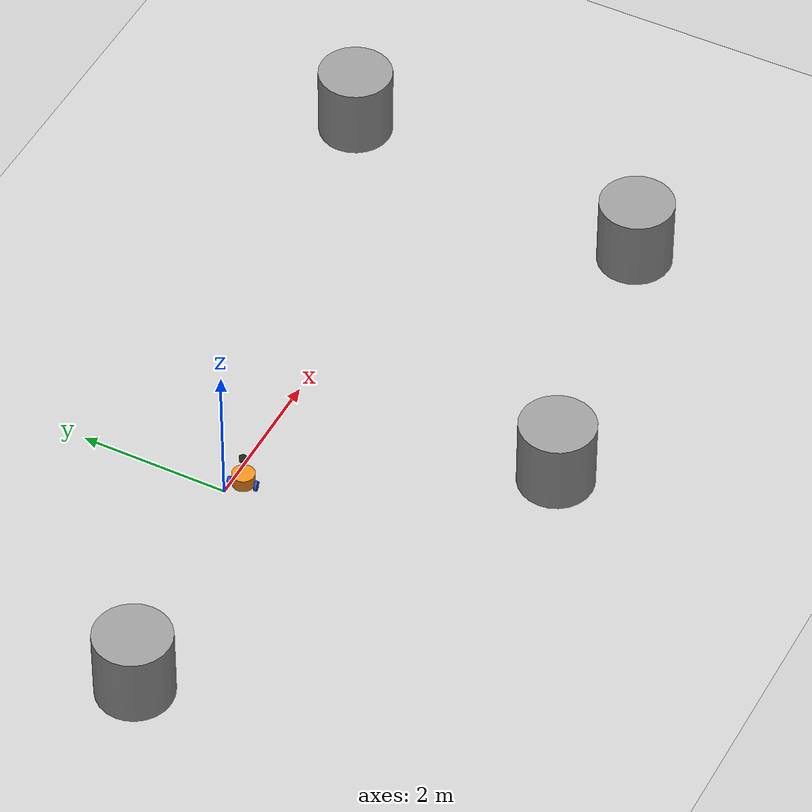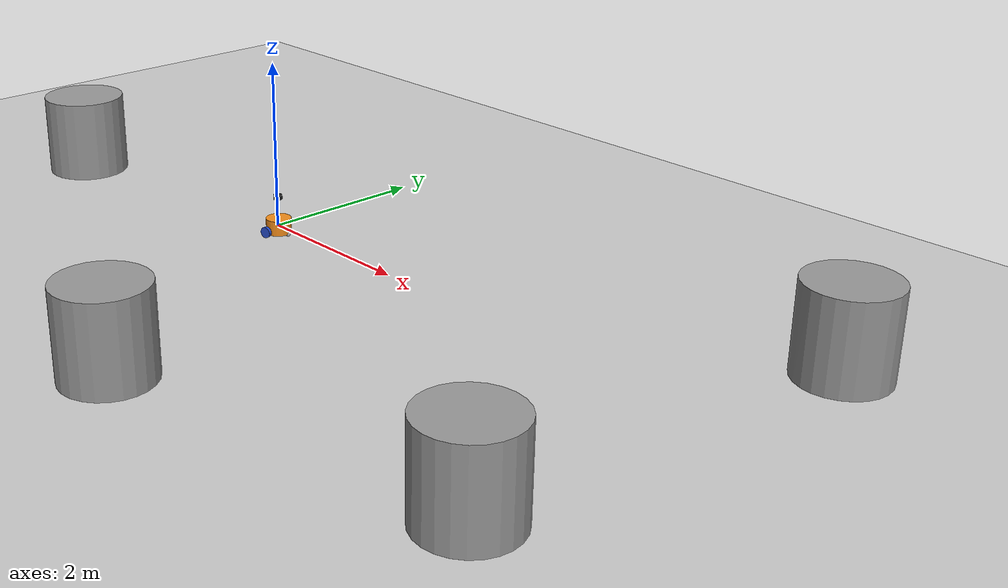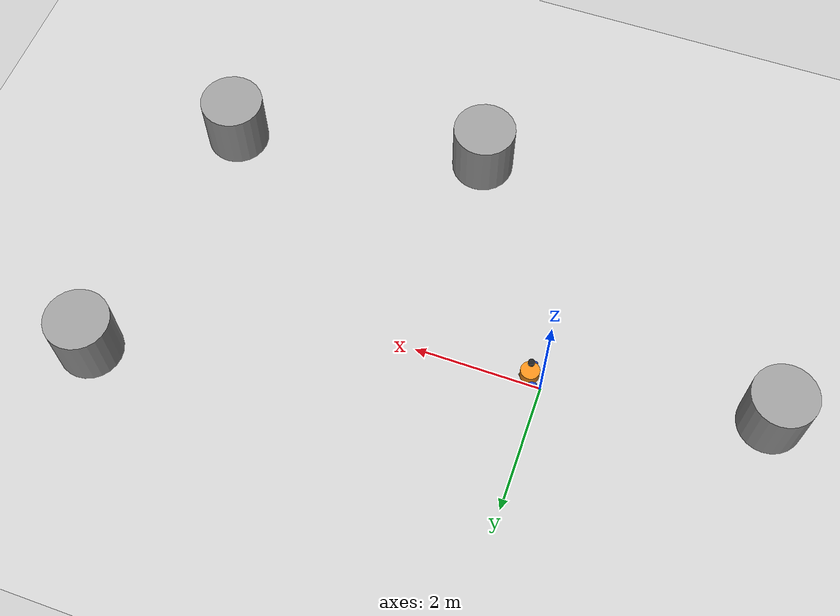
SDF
<sdf version="1.7">
 <world name="default">
  <light name="sun" type="directional">
   <pose>0 0 10 0 -0 0</pose>
   <diffuse>0.8 0.8 0.8 1</diffuse>
   <specular>0.2 0.2 0.2 1</specular>
   <attenuation>
    <range>1000</range>
    <constant>0.9</constant>
    <linear>0.01</linear>
    <quadratic>0.001</quadratic>
   </attenuation>
   <direction>-0.5 0.1 -0.9</direction>
   <spot><inner_angle>0</inner_angle><outer_angle>0</outer_angle><falloff>0</falloff></spot>
  </light>
  <model name="ground_plane">
   <static>1</static>
   <link name="link">
    <collision name="collision">
     <geometry><plane><normal>0 0 1</normal><size>1000 1000</size></plane></geometry>
     <surface>
      <contact><collide_bitmask>65535</collide_bitmask></contact>
      <friction><ode><mu>100</mu><mu2>50</mu2></ode></friction>
     </surface>
    </collision>
    <visual name="visual">
     <cast_shadows>0</cast_shadows>
     <geometry><plane><normal>0 0 1</normal><size>1000 1000</size></plane></geometry>
     <material>
      <script><uri>file://media/materials/scripts/gazebo.material</uri><name>Gazebo/Grey</name></script>
     </material>
    </visual>
   </link>
  </model>
  <gravity>0 0 -9.8</gravity>
  <magnetic_field>6e-06 2.3e-05 -4.2e-05</magnetic_field>
  <atmosphere type="adiabatic"/>
  <physics type="ode">
   <max_step_size>0.001</max_step_size>
   <real_time_factor>1</real_time_factor>
   <real_time_update_rate>1000</real_time_update_rate>
  </physics>
  <scene><ambient>0.4 0.4 0.4 1</ambient><background>0.7 0.7 0.7 1</background><shadows>1</shadows></scene>
  <audio><device>default</device></audio>
  <spherical_coordinates>
   <surface_model>EARTH_WGS84</surface_model>
   <latitude_deg>0</latitude_deg>
   <longitude_deg>0</longitude_deg>
   <elevation>0</elevation>
   <heading_deg>0</heading_deg>
  </spherical_coordinates>
  <model name="my_bot">
   <link name="base_link">
    <inertial>
     <pose>-0.00448 0 -8e-05 1.5708 -0 1.5708</pose>
     <mass>15.625</mass>
     <inertia>
      <ixx>0.182974</ixx>
      <ixy>-1.78306e-18</ixy>
      <ixz>-2.68728e-18</ixz>
      <iyy>0.235611</iyy>
      <iyz>-0.0062944</iyz>
      <izz>0.173487</izz>
     </inertia>
    </inertial>
    <collision name="base_link_collision"><geometry><box><size>0.3 0.3 0.18</size></box></geometry></collision>
    <collision name="base_link_fixed_joint_lump__back_caster_collision_1">
     <pose>-0.14 0 -0.09 0 -0 0</pose>
     <geometry><sphere><radius>0.025</radius></sphere></geometry>
    </collision>
    <collision name="base_link_fixed_joint_lump__laser_frame_collision_2">
     <pose>0 0 0.35 0 -0 0</pose>
     <geometry><cylinder><length>0.055</length><radius>0.0508</radius></cylinder></geometry>
    </collision>
    <visual name="base_link_visual">
     <geometry><cylinder><length>0.18</length><radius>0.15</radius></cylinder></geometry>
     <material>
      <script><name>Gazebo/Orange</name><uri>file://media/materials/scripts/gazebo.material</uri></script>
     </material>
    </visual>
    <visual name="base_link_fixed_joint_lump__back_caster_visual_1">
     <pose>-0.14 0 -0.09 0 -0 0</pose>
     <geometry><sphere><radius>0.025</radius></sphere></geometry>
    </visual>
    <visual name="base_link_fixed_joint_lump__laser_frame_visual_2">
     <pose>0 0 0.35 0 -0 0</pose>
     <geometry><cylinder><length>0.055</length><radius>0.0508</radius></cylinder></geometry>
     <material>
      <script><name>Gazebo/Black</name><uri>file://media/materials/scripts/gazebo.material</uri></script>
     </material>
    </visual>
    <sensor name="lidar" type="ray">
     <always_on>1</always_on>
     <visualize>1</visualize>
     <update_rate>5</update_rate>
     <ray>
      <scan>
       <horizontal>
        <samples>360</samples>
        <resolution>1</resolution>
        <min_angle>0</min_angle>
        <max_angle>6.28</max_angle>
       </horizontal>
       <vertical><samples>1</samples><min_angle>0</min_angle><max_angle>0</max_angle></vertical>
      </scan>
      <range><min>0.3</min><max>12</max><resolution>0.015</resolution></range>
      <noise><type>gaussian</type><mean>0</mean><stddev>0.01</stddev></noise>
     </ray>
     <plugin name="scan" filename="libgazebo_ros_ray_sensor.so">
      <ros><remapping>~/out:=scan</remapping></ros>
      <output_type>sensor_msgs/LaserScan</output_type>
      <frame_name>laser_frame</frame_name>
     </plugin>
     <pose>0 0 0.35 0 -0 0</pose>
    </sensor>
   </link>
   <joint name="drivewhl_l_joint" type="revolute">
    <pose relative_to="base_link">0.05 0.175 -0.05 0 -0 0</pose>
    <parent>base_link</parent>
    <child>drivewhl_l_link</child>
    <axis>
     <xyz>0 1 0</xyz>
     <limit><lower>-1e+16</lower><upper>1e+16</upper></limit>
     <dynamics><spring_reference>0</spring_reference><spring_stiffness>0</spring_stiffness></dynamics>
    </axis>
   </joint>
   <link name="drivewhl_l_link">
    <pose relative_to="drivewhl_l_joint">0 0 0 0 -0 0</pose>
    <inertial>
     <pose>0 0 0 1.5708 -0 0</pose>
     <mass>0.5</mass>
     <inertia>
      <ixx>0.000594792</ixx>
      <ixy>0</ixy>
      <ixz>0</ixz>
      <iyy>0.000594792</iyy>
      <iyz>0</iyz>
      <izz>0.00105625</izz>
     </inertia>
    </inertial>
    <collision name="drivewhl_l_link_collision">
     <pose>0 0 0 1.5708 -0 0</pose>
     <geometry><sphere><radius>0.065</radius></sphere></geometry>
    </collision>
    <visual name="drivewhl_l_link_visual">
     <pose>0 0 0 1.5708 -0 0</pose>
     <geometry><cylinder><length>0.04</length><radius>0.065</radius></cylinder></geometry>
     <material>
      <script><name>Gazebo/Blue</name><uri>file://media/materials/scripts/gazebo.material</uri></script>
     </material>
    </visual>
   </link>
   <joint name="drivewhl_r_joint" type="revolute">
    <pose relative_to="base_link">0.05 -0.175 -0.05 0 -0 0</pose>
    <parent>base_link</parent>
    <child>drivewhl_r_link</child>
    <axis>
     <xyz>0 1 0</xyz>
     <limit><lower>-1e+16</lower><upper>1e+16</upper></limit>
     <dynamics><spring_reference>0</spring_reference><spring_stiffness>0</spring_stiffness></dynamics>
    </axis>
   </joint>
   <link name="drivewhl_r_link">
    <pose relative_to="drivewhl_r_joint">0 0 0 0 -0 0</pose>
    <inertial>
     <pose>0 0 0 1.5708 -0 0</pose>
     <mass>0.5</mass>
     <inertia>
      <ixx>0.000594792</ixx>
      <ixy>0</ixy>
      <ixz>0</ixz>
      <iyy>0.000594792</iyy>
      <iyz>0</iyz>
      <izz>0.00105625</izz>
     </inertia>
    </inertial>
    <collision name="drivewhl_r_link_collision">
     <pose>0 0 0 1.5708 -0 0</pose>
     <geometry><sphere><radius>0.065</radius></sphere></geometry>
    </collision>
    <visual name="drivewhl_r_link_visual">
     <pose>0 0 0 1.5708 -0 0</pose>
     <geometry><cylinder><length>0.04</length><radius>0.065</radius></cylinder></geometry>
     <material>
      <script><name>Gazebo/Blue</name><uri>file://media/materials/scripts/gazebo.material</uri></script>
     </material>
    </visual>
   </link>
   <static>0</static>
   <plugin name="gazebo_ros2_control" filename="libgazebo_ros2_control.so">
    <parameters>/home/wiktor/dev/FinalYearProject/install/robot_description/share/robot_description/config/my_controllers.yaml</parameters>
   </plugin>
   <pose>0.219386 -0.156059 0.114996 2.4e-05 7e-06 -2.89838</pose>
  </model>
  <model name="unit_cylinder">
   <pose>-3.367 -0.60653 0.499993 -3e-06 -3e-06 0</pose>
   <link name="link">
    <inertial>
     <mass>1</mass>
     <inertia><ixx>0.145833</ixx><ixy>0</ixy><ixz>0</ixz><iyy>0.145833</iyy><iyz>0</iyz><izz>0.125</izz></inertia>
    </inertial>
    <collision name="collision">
     <geometry><cylinder><radius>0.5</radius><length>1</length></cylinder></geometry>
    </collision>
    <visual name="visual">
     <geometry><cylinder><radius>0.5</radius><length>1</length></cylinder></geometry>
     <material>
      <script><name>Gazebo/Grey</name><uri>file://media/materials/scripts/gazebo.material</uri></script>
     </material>
    </visual>
   </link>
  </model>
  <model name="unit_cylinder_0">
   <pose>2.08371 -3.5855 0.499997 3e-06 4e-06 -0</pose>
   <link name="link">
    <inertial>
     <mass>1</mass>
     <inertia><ixx>0.145833</ixx><ixy>0</ixy><ixz>0</ixz><iyy>0.145833</iyy><iyz>0</iyz><izz>0.125</izz></inertia>
    </inertial>
    <collision name="collision">
     <geometry><cylinder><radius>0.5</radius><length>1</length></cylinder></geometry>
    </collision>
    <visual name="visual">
     <geometry><cylinder><radius>0.5</radius><length>1</length></cylinder></geometry>
     <material>
      <script><name>Gazebo/Grey</name><uri>file://media/materials/scripts/gazebo.material</uri></script>
     </material>
    </visual>
   </link>
  </model>
  <model name="unit_cylinder_1">
   <pose>6.68512 1.62911 0.499993 -3e-06 -4e-06 -0</pose>
   <link name="link">
    <inertial>
     <mass>1</mass>
     <inertia><ixx>0.145833</ixx><ixy>0</ixy><ixz>0</ixz><iyy>0.145833</iyy><iyz>0</iyz><izz>0.125</izz></inertia>
    </inertial>
    <collision name="collision">
     <geometry><cylinder><radius>0.5</radius><length>1</length></cylinder></geometry>
    </collision>
    <visual name="visual">
     <geometry><cylinder><radius>0.5</radius><length>1</length></cylinder></geometry>
     <material>
      <script><name>Gazebo/Grey</name><uri>file://media/materials/scripts/gazebo.material</uri></script>
     </material>
    </visual>
   </link>
  </model>
  <model name="unit_cylinder_2">
   <pose>6.13149 -2.76078 0.499997 3e-06 4e-06 -0</pose>
   <link name="link">
    <inertial>
     <mass>1</mass>
     <inertia><ixx>0.145833</ixx><ixy>0</ixy><ixz>0</ixz><iyy>0.145833</iyy><iyz>0</iyz><izz>0.125</izz></inertia>
    </inertial>
    <collision name="collision">
     <geometry><cylinder><radius>0.5</radius><length>1</length></cylinder></geometry>
    </collision>
    <visual name="visual">
     <geometry><cylinder><radius>0.5</radius><length>1</length></cylinder></geometry>
     <material>
      <script><name>Gazebo/Grey</name><uri>file://media/materials/scripts/gazebo.material</uri></script>
     </material>
    </visual>
   </link>
  </model>
 </world>
</sdf>
